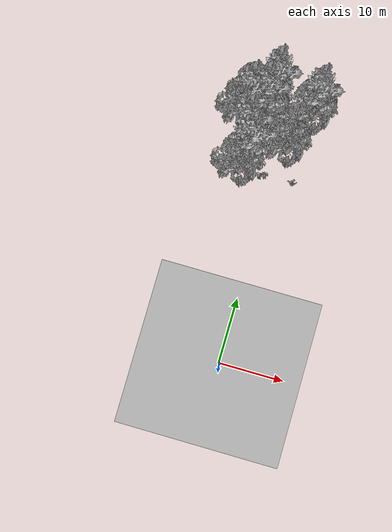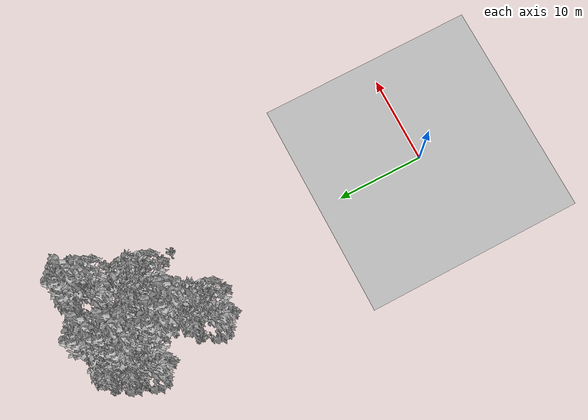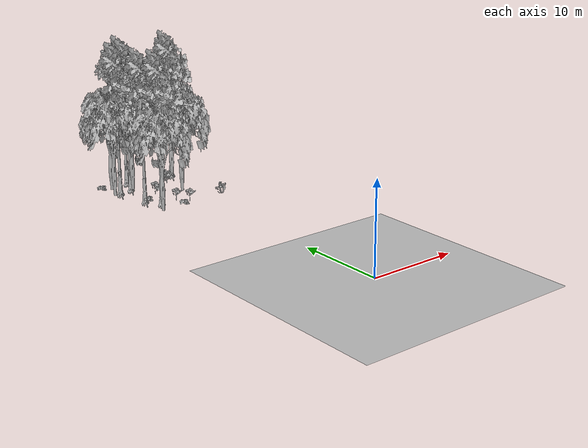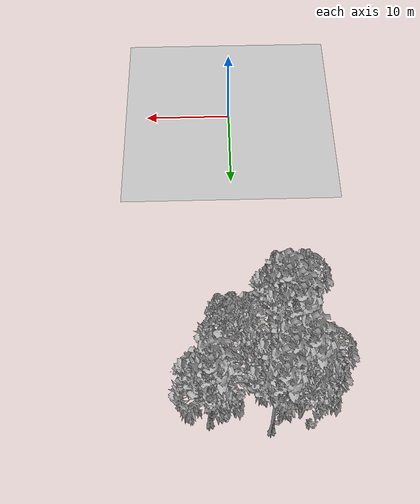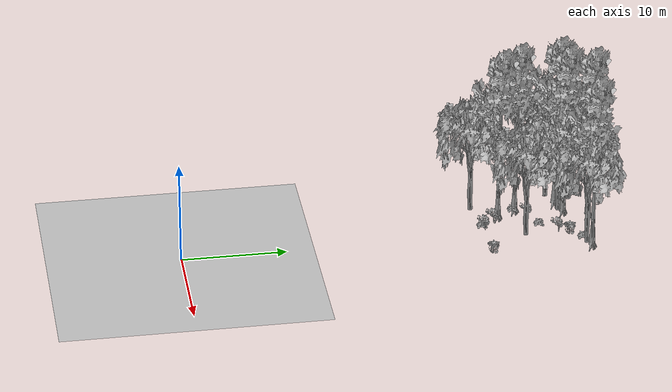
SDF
<sdf version="1.7">
 <world name="default">
  <model name="ground_plane">
   <static>1</static>
   <link name="link">
    <collision name="collision">
     <pose>-50 0 0 0 -0 0</pose>
     <geometry><plane><normal>0 0 1</normal><size>80 80</size></plane></geometry>
     <surface><contact><ode><min_depth>0.01</min_depth><max_vel>0</max_vel></ode></contact></surface>
    </collision>
    <visual name="grass">
     <cast_shadows>0</cast_shadows>
     <geometry>
      <mesh>
       <scale>0.46714285714285714 0.46714285714285714 0.1</scale>
       <uri>file://grass_plane/meshes/grass_plane.dae</uri>
      </mesh>
     </geometry>
    </visual>
   </link>
  </model>
  <model name="Tree 20">
   <static>1</static>
   <pose>2.7072010651863962 38.707927730834726 0 1.57079 -0 0</pose>
   <link name="link">
    <collision name="collision">
     <geometry><mesh><scale>3.5 5 3.5</scale><uri>model://tree_9/meshes/tree_9.obj</uri></mesh></geometry>
    </collision>
    <visual name="visual">
     <geometry><mesh><scale>3.5 5 3.5</scale><uri>model://tree_9/meshes/tree_9.obj</uri></mesh></geometry>
    </visual>
   </link>
  </model>
  <model name="Tree 45">
   <static>1</static>
   <pose>-3.8124918945038218 30.902379312032224 0 1.57079 -0 0</pose>
   <link name="link">
    <collision name="collision">
     <geometry><mesh><scale>3.5 5 3.5</scale><uri>model://tree_9/meshes/tree_9.obj</uri></mesh></geometry>
    </collision>
    <visual name="visual">
     <geometry><mesh><scale>3.5 5 3.5</scale><uri>model://tree_9/meshes/tree_9.obj</uri></mesh></geometry>
    </visual>
   </link>
  </model>
  <model name="Tree 152">
   <static>1</static>
   <pose>-4.834365386880492 32.71732574013244 0 1.57079 -0 0</pose>
   <link name="link">
    <collision name="collision">
     <geometry><mesh><scale>3.5 5 3.5</scale><uri>model://tree_9/meshes/tree_9.obj</uri></mesh></geometry>
    </collision>
    <visual name="visual">
     <geometry><mesh><scale>3.5 5 3.5</scale><uri>model://tree_9/meshes/tree_9.obj</uri></mesh></geometry>
    </visual>
   </link>
  </model>
  <model name="Tree 187">
   <static>1</static>
   <pose>0.19992881314611566 32.80051684814612 0 1.57079 -0 0</pose>
   <link name="link">
    <collision name="collision">
     <geometry><mesh><scale>3.5 5 3.5</scale><uri>model://tree_2/meshes/tree_2.obj</uri></mesh></geometry>
    </collision>
    <visual name="visual">
     <geometry><mesh><scale>3.5 5 3.5</scale><uri>model://tree_2/meshes/tree_2.obj</uri></mesh></geometry>
    </visual>
   </link>
  </model>
  <model name="Tree 221">
   <static>1</static>
   <pose>-3.876952173464545 37.261151485632325 0 1.57079 -0 0</pose>
   <link name="link">
    <collision name="collision">
     <geometry><mesh><scale>3.5 5 3.5</scale><uri>model://tree_9/meshes/tree_9.obj</uri></mesh></geometry>
    </collision>
    <visual name="visual">
     <geometry><mesh><scale>3.5 5 3.5</scale><uri>model://tree_9/meshes/tree_9.obj</uri></mesh></geometry>
    </visual>
   </link>
  </model>
  <model name="Tree 231">
   <static>1</static>
   <pose>-5.922991160727804 38.17005366237008 0 1.57079 -0 0</pose>
   <link name="link">
    <collision name="collision">
     <geometry><mesh><scale>3.5 5 3.5</scale><uri>model://tree_2/meshes/tree_2.obj</uri></mesh></geometry>
    </collision>
    <visual name="visual">
     <geometry><mesh><scale>3.5 5 3.5</scale><uri>model://tree_2/meshes/tree_2.obj</uri></mesh></geometry>
    </visual>
   </link>
  </model>
  <model name="Tree 303">
   <static>1</static>
   <pose>-5.267479871619919 28.451050815100174 0 1.57079 -0 0</pose>
   <link name="link">
    <collision name="collision">
     <geometry><mesh><scale>3.5 5 3.5</scale><uri>model://tree_2/meshes/tree_2.obj</uri></mesh></geometry>
    </collision>
    <visual name="visual">
     <geometry><mesh><scale>3.5 5 3.5</scale><uri>model://tree_2/meshes/tree_2.obj</uri></mesh></geometry>
    </visual>
   </link>
  </model>
  <model name="Tree 378">
   <static>1</static>
   <pose>-6.765976067974826 36.06596849465798 0 1.57079 -0 0</pose>
   <link name="link">
    <collision name="collision">
     <geometry><mesh><scale>3.5 5 3.5</scale><uri>model://tree_2/meshes/tree_2.obj</uri></mesh></geometry>
    </collision>
    <visual name="visual">
     <geometry><mesh><scale>3.5 5 3.5</scale><uri>model://tree_2/meshes/tree_2.obj</uri></mesh></geometry>
    </visual>
   </link>
  </model>
  <model name="Tree 477">
   <static>1</static>
   <pose>-3.0239749285241544 39.52128822321703 0 1.57079 -0 0</pose>
   <link name="link">
    <collision name="collision">
     <geometry><mesh><scale>3.5 5 3.5</scale><uri>model://tree_9/meshes/tree_9.obj</uri></mesh></geometry>
    </collision>
    <visual name="visual">
     <geometry><mesh><scale>3.5 5 3.5</scale><uri>model://tree_9/meshes/tree_9.obj</uri></mesh></geometry>
    </visual>
   </link>
  </model>
  <model name="Tree 493">
   <static>1</static>
   <pose>-5.5748369709810675 36.761231460486826 0 1.57079 -0 0</pose>
   <link name="link">
    <collision name="collision">
     <geometry><mesh><scale>3.5 5 3.5</scale><uri>model://tree_9/meshes/tree_9.obj</uri></mesh></geometry>
    </collision>
    <visual name="visual">
     <geometry><mesh><scale>3.5 5 3.5</scale><uri>model://tree_9/meshes/tree_9.obj</uri></mesh></geometry>
    </visual>
   </link>
  </model>
  <model name="Tree 542">
   <static>1</static>
   <pose>-3.9581854265396075 36.77922904829376 0 1.57079 -0 0</pose>
   <link name="link">
    <collision name="collision">
     <geometry><mesh><scale>3.5 5 3.5</scale><uri>model://tree_2/meshes/tree_2.obj</uri></mesh></geometry>
    </collision>
    <visual name="visual">
     <geometry><mesh><scale>3.5 5 3.5</scale><uri>model://tree_2/meshes/tree_2.obj</uri></mesh></geometry>
    </visual>
   </link>
  </model>
  <model name="Tree 618">
   <static>1</static>
   <pose>2.4170204008592435 38.22490802294807 0 1.57079 -0 0</pose>
   <link name="link">
    <collision name="collision">
     <geometry><mesh><scale>3.5 5 3.5</scale><uri>model://tree_2/meshes/tree_2.obj</uri></mesh></geometry>
    </collision>
    <visual name="visual">
     <geometry><mesh><scale>3.5 5 3.5</scale><uri>model://tree_2/meshes/tree_2.obj</uri></mesh></geometry>
    </visual>
   </link>
  </model>
  <model name="Bush 14">
   <static>1</static>
   <pose>3.1471335592164422 29.067053188737617 0 1.57079 -0 0</pose>
   <link name="link">
    <collision name="collision">
     <geometry><mesh><scale>2 2 2</scale><uri>model://bush_4/meshes/bush_4.obj</uri></mesh></geometry>
     <surface><contact><collide_without_contact>false</collide_without_contact></contact></surface>
    </collision>
    <visual name="visual">
     <geometry><mesh><scale>2 2 2</scale><uri>model://bush_4/meshes/bush_4.obj</uri></mesh></geometry>
    </visual>
   </link>
  </model>
  <model name="Bush 63">
   <static>1</static>
   <pose>-2.858939314146369 33.6264354813957 0 1.57079 -0 0</pose>
   <link name="link">
    <collision name="collision">
     <geometry><mesh><scale>2 2 2</scale><uri>model://bush_5/meshes/bush_5.obj</uri></mesh></geometry>
     <surface><contact><collide_without_contact>false</collide_without_contact></contact></surface>
    </collision>
    <visual name="visual">
     <geometry><mesh><scale>2 2 2</scale><uri>model://bush_5/meshes/bush_5.obj</uri></mesh></geometry>
    </visual>
   </link>
  </model>
  <model name="Bush 73">
   <static>1</static>
   <pose>0.29830223194287697 36.010294502471154 0 1.57079 -0 0</pose>
   <link name="link">
    <collision name="collision">
     <geometry><mesh><scale>2 2 2</scale><uri>model://bush_5/meshes/bush_5.obj</uri></mesh></geometry>
     <surface><contact><collide_without_contact>false</collide_without_contact></contact></surface>
    </collision>
    <visual name="visual">
     <geometry><mesh><scale>2 2 2</scale><uri>model://bush_5/meshes/bush_5.obj</uri></mesh></geometry>
    </visual>
   </link>
  </model>
  <model name="Bush 148">
   <static>1</static>
   <pose>1.3446357622656677 38.07365707904103 0 1.57079 -0 0</pose>
   <link name="link">
    <collision name="collision">
     <geometry><mesh><scale>2 2 2</scale><uri>model://bush_2/meshes/bush_2.obj</uri></mesh></geometry>
     <surface><contact><collide_without_contact>false</collide_without_contact></contact></surface>
    </collision>
    <visual name="visual">
     <geometry><mesh><scale>2 2 2</scale><uri>model://bush_2/meshes/bush_2.obj</uri></mesh></geometry>
    </visual>
   </link>
  </model>
  <model name="Bush 157">
   <static>1</static>
   <pose>-2.265873433863767 30.24633405653583 0 1.57079 -0 0</pose>
   <link name="link">
    <collision name="collision">
     <geometry><mesh><scale>2 2 2</scale><uri>model://bush_5/meshes/bush_5.obj</uri></mesh></geometry>
     <surface><contact><collide_without_contact>false</collide_without_contact></contact></surface>
    </collision>
    <visual name="visual">
     <geometry><mesh><scale>2 2 2</scale><uri>model://bush_5/meshes/bush_5.obj</uri></mesh></geometry>
    </visual>
   </link>
  </model>
  <model name="Bush 414">
   <static>1</static>
   <pose>-1.1438222695380418 29.205905284943555 0 1.57079 -0 0</pose>
   <link name="link">
    <collision name="collision">
     <geometry><mesh><scale>2 2 2</scale><uri>model://bush_5/meshes/bush_5.obj</uri></mesh></geometry>
     <surface><contact><collide_without_contact>false</collide_without_contact></contact></surface>
    </collision>
    <visual name="visual">
     <geometry><mesh><scale>2 2 2</scale><uri>model://bush_5/meshes/bush_5.obj</uri></mesh></geometry>
    </visual>
   </link>
  </model>
  <model name="Bush 431">
   <static>1</static>
   <pose>-1.636724658642997 34.43213585324966 0 1.57079 -0 0</pose>
   <link name="link">
    <collision name="collision">
     <geometry><mesh><scale>2 2 2</scale><uri>model://bush_2/meshes/bush_2.obj</uri></mesh></geometry>
     <surface><contact><collide_without_contact>false</collide_without_contact></contact></surface>
    </collision>
    <visual name="visual">
     <geometry><mesh><scale>2 2 2</scale><uri>model://bush_2/meshes/bush_2.obj</uri></mesh></geometry>
    </visual>
   </link>
  </model>
  <model name="Bush 462">
   <static>1</static>
   <pose>-2.043913274473539 29.003639280227674 0 1.57079 -0 0</pose>
   <link name="link">
    <collision name="collision">
     <geometry><mesh><scale>2 2 2</scale><uri>model://bush_2/meshes/bush_2.obj</uri></mesh></geometry>
     <surface><contact><collide_without_contact>false</collide_without_contact></contact></surface>
    </collision>
    <visual name="visual">
     <geometry><mesh><scale>2 2 2</scale><uri>model://bush_2/meshes/bush_2.obj</uri></mesh></geometry>
    </visual>
   </link>
  </model>
  <model name="Bush 467">
   <static>1</static>
   <pose>-4.610736267832301 32.46425937845942 0 1.57079 -0 0</pose>
   <link name="link">
    <collision name="collision">
     <geometry><mesh><scale>2 2 2</scale><uri>model://bush_2/meshes/bush_2.obj</uri></mesh></geometry>
     <surface><contact><collide_without_contact>false</collide_without_contact></contact></surface>
    </collision>
    <visual name="visual">
     <geometry><mesh><scale>2 2 2</scale><uri>model://bush_2/meshes/bush_2.obj</uri></mesh></geometry>
    </visual>
   </link>
  </model>
  <model name="Bush 478">
   <static>1</static>
   <pose>0.7130685930001377 36.87125016396122 0 1.57079 -0 0</pose>
   <link name="link">
    <collision name="collision">
     <geometry><mesh><scale>2 2 2</scale><uri>model://bush_4/meshes/bush_4.obj</uri></mesh></geometry>
     <surface><contact><collide_without_contact>false</collide_without_contact></contact></surface>
    </collision>
    <visual name="visual">
     <geometry><mesh><scale>2 2 2</scale><uri>model://bush_4/meshes/bush_4.obj</uri></mesh></geometry>
    </visual>
   </link>
  </model>
  <model name="Bush 630">
   <static>1</static>
   <pose>-6.784336226786785 38.89480380818151 0 1.57079 -0 0</pose>
   <link name="link">
    <collision name="collision">
     <geometry><mesh><scale>2 2 2</scale><uri>model://bush_2/meshes/bush_2.obj</uri></mesh></geometry>
     <surface><contact><collide_without_contact>false</collide_without_contact></contact></surface>
    </collision>
    <visual name="visual">
     <geometry><mesh><scale>2 2 2</scale><uri>model://bush_2/meshes/bush_2.obj</uri></mesh></geometry>
    </visual>
   </link>
  </model>
 </world>
</sdf>
